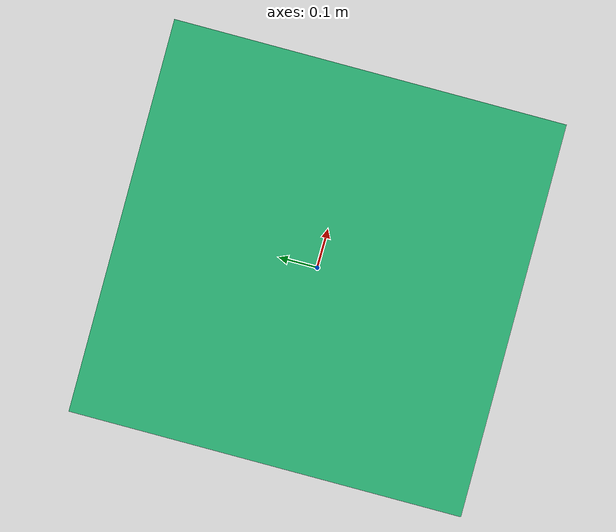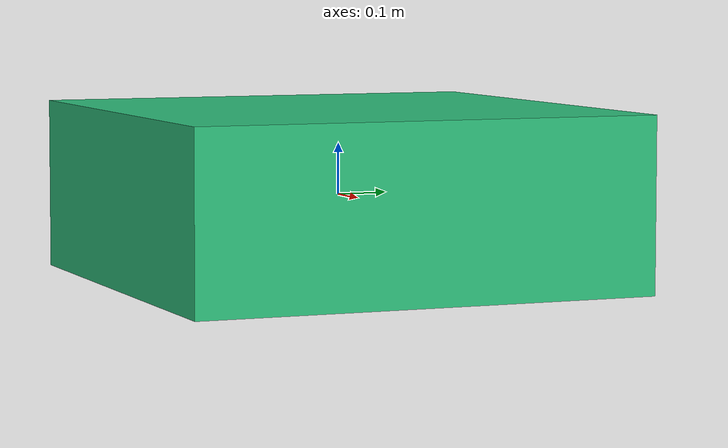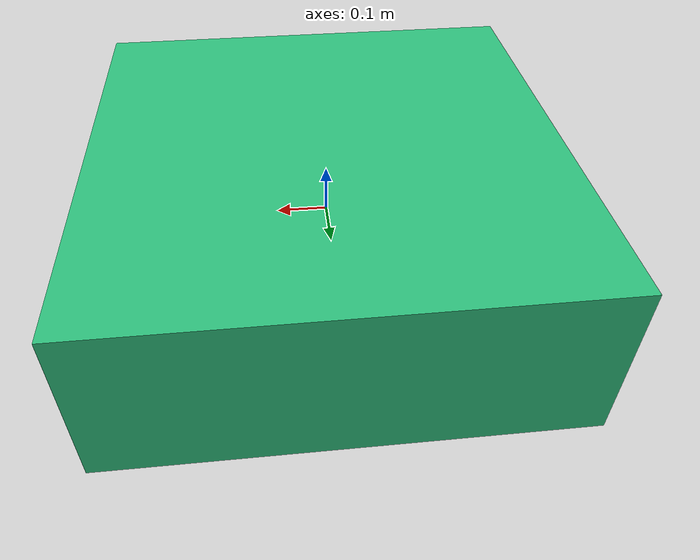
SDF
<?xml version='1.0'?>
<sdf version='1.6'>

    <model name="green_decor">
      <link name="link">
        <collision name="collision">
          <geometry>
            <box>
              <size>0.91 0.91 0.34</size>
            </box>
          </geometry>
        </collision>

        <visual name="visual">
          <geometry>
            <box>
              <size>0.91 0.91 0.34</size>
            </box>
    </geometry>

          <material>
              <script>
                <uri>file://media/materials/scripts/gazebo.material</uri>
                <name>Gazebo/Grey</name>
              </script>
              <ambient>0.180392 0.760784 0.494118 1</ambient>
            </material>
        </visual>
      </link>
      <static>1</static>
    </model>
</sdf>
